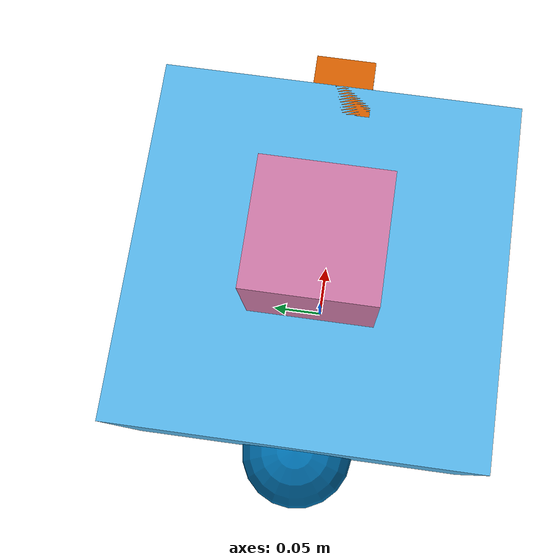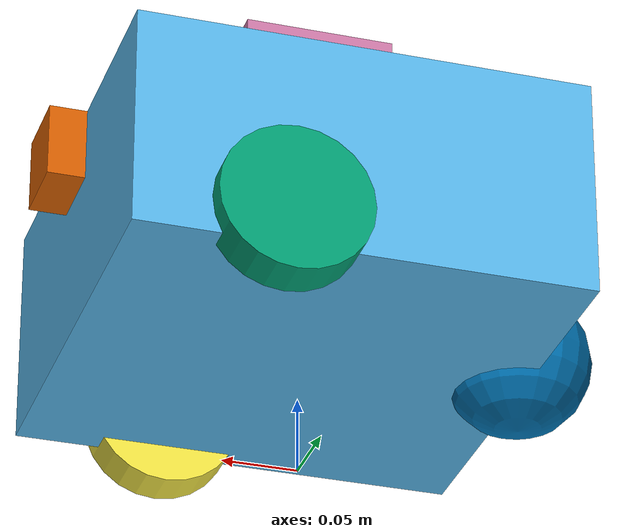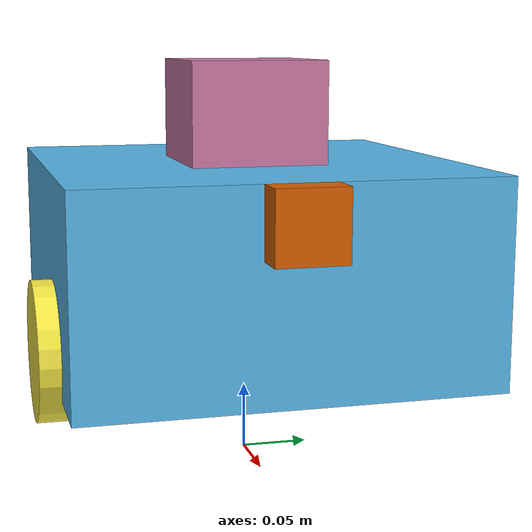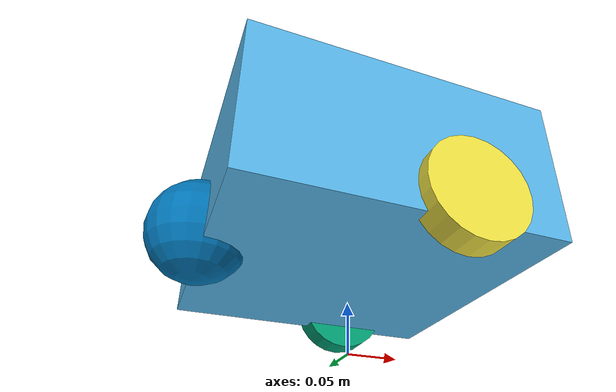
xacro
<?xml version="1.0"?>
<robot name="diff_drive" xmlns:xacro="http://www.ros.org/wiki/xacro">

  <xacro:property name="is_sim" value="$(arg sim_mode)"/>

  <ros2_control name="IgnitionSystem" type="system">
    <xacro:if value="${is_sim==True}">
      <hardware>
        <plugin>ign_ros2_control/IgnitionSystem</plugin>
      </hardware>
    </xacro:if>
    <xacro:if value="${is_sim==False}">
      <hardware>
        <plugin>hardware_link2/HardwareLinkInterface</plugin>
        <param name="device">/dev/ttyUSB1</param>
        <param name="baud_rate">115200</param>
        <param name="timeout_ms">1000</param>
      </hardware>
    </xacro:if>
    <joint name="left_wheel_joint">
      <command_interface name="velocity">
        <param name="min">-1</param>
        <param name="max">1</param>
      </command_interface>
      <state_interface name="position"/>
      <state_interface name="velocity"/>
    </joint>
    <joint name="right_wheel_joint">
      <command_interface name="velocity">
        <param name="min">-1</param>
        <param name="max">1</param>
      </command_interface>
      <state_interface name="position"/>
      <state_interface name="velocity"/>
    </joint>
  </ros2_control>

  <gazebo>
    <plugin filename="ign_ros2_control-system" name="ign_ros2_control::IgnitionROS2ControlPlugin">
      <parameters>/root/data/project_ws/src/ros_gz_example_bringup/config/diff_drive_controller_velocity.yaml</parameters>
    </plugin>
  </gazebo>

  <link name="base_link">
  </link>

  <link name="chassis">
    <origin rpy="0 0 0" xyz="0 0 0.15"/>
    <inertial>
      <mass value="1"/>
      <inertia ixx="0.009375" ixy="0" ixz="0" iyy="0.015" iyz="0" izz="0.009375"/>
    </inertial>
    <visual>
      <geometry>
        <box size="0.3 0.3 0.15"/>
      </geometry>
      <gazebo>
        <material>
          <ambient>0.5 0.5 1.0 1</ambient>
          <diffuse>0.5 0.5 1.0 1</diffuse>
          <specular>0.0 0.0 1.0 1</specular>
        </material>
      </gazebo>
    </visual>
    <collision name='collision_chassis'>
      <geometry>
        <box size="0.3 0.3 0.15"/>
      </geometry>
    </collision>
  </link>

  <joint name="base_joint" type="fixed">
    <parent link="base_link"/>
    <child link="chassis"/>
    <origin rpy="0 0 0" xyz="0 0 0.15"/>
  </joint>

  <link name="left_wheel">
    <origin rpy="-1.5707 0 0" xyz="0.05 0.15 0.10"/>
    <inertial>
      <mass value="0.3"/>
      <inertia ixx="0.0012" ixy="0" ixz="0" iyy="0.0012" iyz="0" izz="0.0012"/>
    </inertial>
    <visual>
      <geometry>
        <cylinder length="0.03" radius="0.05"/>
      </geometry>
      <gazebo>
        <material>
          <ambient>0.2 0.2 0.2 1</ambient>
          <diffuse>0.2 0.2 0.2 1</diffuse>
          <specular>0.2 0.2 0.2 1</specular>
        </material>
      </gazebo>
    </visual>
    <collision name='collision_left_wheel'>
      <geometry>
        <cylinder length="0.03" radius="0.05"/>
      </geometry>
    </collision>
    <gazebo reference="left_wheel">
      <surface>
        <friction>
          <ode>
            <mu>1.0</mu>
            <mu2>1.0</mu2>
          </ode>
        </friction>
      </surface>
    </gazebo>
  </link>

  <joint name="left_wheel_joint" type="continuous">
    <parent link="base_link"/>
    <child link="left_wheel"/>
    <axis xyz="0 0 1"/>
    <origin rpy="-1.5707 0 0" xyz="0.05 0.15 0.10"/>
  </joint>

  <link name="right_wheel">
    <origin rpy="-1.5707 0 0" xyz="0.05 -0.15 0.10"/>
    <inertial>
      <mass value="0.3"/>
      <inertia ixx="0.0012" ixy="0" ixz="0" iyy="0.0012" iyz="0" izz="0.0012"/>
    </inertial>
    <visual>
      <geometry>
        <cylinder length="0.03" radius="0.05"/>
      </geometry>
      <gazebo>
        <material>
          <ambient>0.2 0.2 0.2 1</ambient>
          <diffuse>0.2 0.2 0.2 1</diffuse>
          <specular>0.2 0.2 0.2 1</specular>
        </material>
      </gazebo>
    </visual>
    <collision name='collision_right_wheel'>
      <geometry>
        <cylinder length="0.03" radius="0.05"/>
      </geometry>
    </collision>
    <gazebo reference="right_wheel">
      <surface>
        <friction>
          <ode>
            <mu>1.0</mu>
            <mu2>1.0</mu2>
          </ode>
        </friction>
      </surface>
    </gazebo>
  </link>

  <joint name="right_wheel_joint" type="continuous">
    <parent link="base_link"/>
    <child link="right_wheel"/>
    <axis xyz="0 0 1"/>
    <origin rpy="-1.5707 0 0" xyz="0.05 -0.15 0.10"/>
  </joint>

  <link name="caster">
    <origin rpy="0 0 0" xyz="-0.15 0 0.10"/>
    <inertial>
      <mass value="0.005"/>
      <inertia ixx="0.00001" ixy="0" ixz="0" iyy="0.00001" iyz="0" izz="0.00001"/>
    </inertial>
    <visual>
      <geometry>
        <sphere radius="0.05"/>
      </geometry>
      <gazebo>
        <material>
          <ambient>0.2 0.2 0.2 1</ambient>
          <diffuse>0.2 0.2 0.2 1</diffuse>
          <specular>0.2 0.2 0.2 1</specular>
        </material>
      </gazebo>
    </visual>
    <collision name='collision_caster'>
      <geometry>
        <sphere radius="0.05"/>
      </geometry>
    </collision>
    <gazebo reference="caster">
      <surface>
        <friction>
          <ode>
            <mu>0.0</mu>
            <mu2>0.0</mu2>
          </ode>
        </friction>
      </surface>
    </gazebo>
  </link>

  <joint name="caster_wheel" type="fixed">
    <parent link="base_link"/>
    <child link="caster"/>
    <origin rpy="0 0 0" xyz="-0.15 0 0.10"/>
  </joint>

  <link name="camera_link">
    <origin rpy="0 0 0" xyz="0.15 0 0.2"/>
    <inertial>
      <mass value="0.1"/>
      <inertia ixx="0.000166667" iyy="0.000166667" izz="0.000166667" ixy="0" ixz="0" iyz="0"/>
    </inertial>
    <visual>
      <geometry>
        <box size="0.05 0.05 0.05"/>
      </geometry>
      <gazebo>
        <material>
          <ambient>0 0 0 1</ambient>
          <diffuse>0 0 0 1</diffuse>
          <specular>0 0 0 1</specular>
        </material>
      </gazebo>
    </visual>
    <collision name="collision">
      <geometry>
        <box size="0.05 0.05 0.05"/>
      </geometry>
    </collision>
  </link>

  <gazebo reference="camera_link">
        <sensor name="camera" type="camera">
          <camera>
            <horizontal_fov>1.047</horizontal_fov>
            <image>
              <width>320</width>
              <height>240</height>
            </image>
            <clip>
              <near>0.1</near>
              <far>100</far>
            </clip>
          </camera>
          <always_on>1</always_on>
          <update_rate>30</update_rate>
          <visualize>true</visualize>
          <topic>camera</topic>
        </sensor>
  </gazebo>

  <joint name="camera_joint" type="fixed">
    <parent link="base_link"/>
    <child link="camera_link"/>
    <origin rpy="0 0 0" xyz="0.15 0 0.2"/>
  </joint>

  <link name="lidar_link">
    <origin rpy="0 0 0" xyz="0 0 0.25"/>
    <inertial>
      <mass value="0.1"/>
      <inertia ixx="0.000166667" iyy="0.000166667" izz="0.000166667" ixy="0" ixz="0" iyz="0"/>
    </inertial>
    <visual>
      <geometry>
        <box size="0.1 0.1 0.1"/>
      </geometry>
    </visual>
    <collision name="collision">
      <geometry>
        <box size="0.1 0.1 0.1"/>
      </geometry>
    </collision>
  </link>

  <gazebo reference="lidar_link">
        <sensor name='gpu_lidar' type='gpu_lidar'>
          <pose>0 0 0 0 0 0</pose>
          <topic>scan</topic>
          <ignition_frame_id>lidar_link</ignition_frame_id>
          <update_rate>10</update_rate>
          <lidar>
            <scan>
              <horizontal>
                <samples>800</samples>
                <resolution>1</resolution>
                <min_angle>-3.1415926536</min_angle>
                <max_angle>+3.1415926536</max_angle>
              </horizontal>
              <vertical>
                <samples>1</samples>
                <resolution>1</resolution>
                <min_angle>0.0</min_angle>
                <max_angle>0.0</max_angle>
              </vertical>
            </scan>
            <range>
              <min>0.08</min>
              <max>12.0</max>
              <resolution>0.01</resolution>
            </range>
            <noise>
              <type>gaussian</type>
              <mean>0.0</mean>
              <stddev>0.01</stddev>
            </noise>
          </lidar>
          <visualize>true</visualize>
        </sensor>
  </gazebo>

  <joint name="lidar_joint" type="fixed">
    <parent link="base_link"/>
    <child link="lidar_link"/>
    <origin rpy="0 0 0" xyz="0 0 0.25"/>
  </joint>

</robot>
